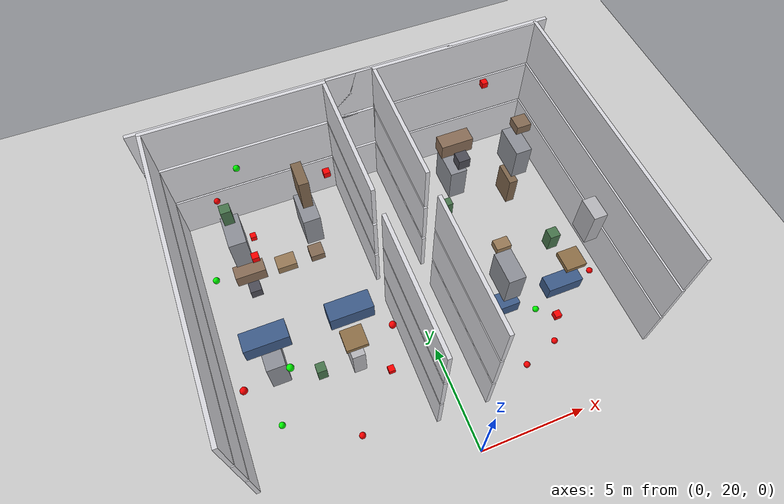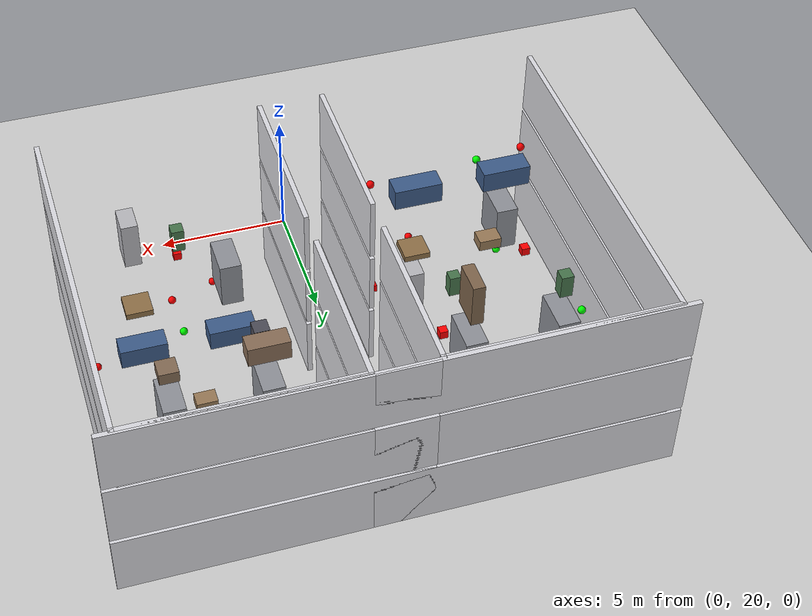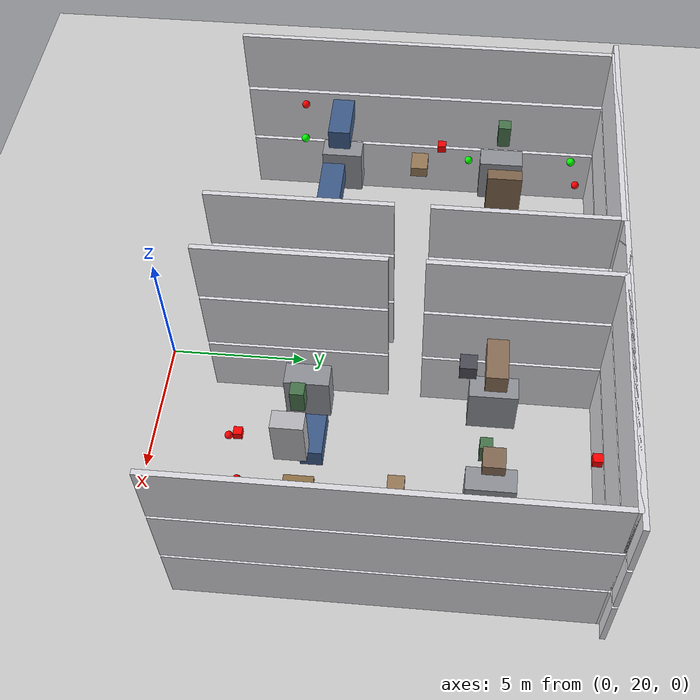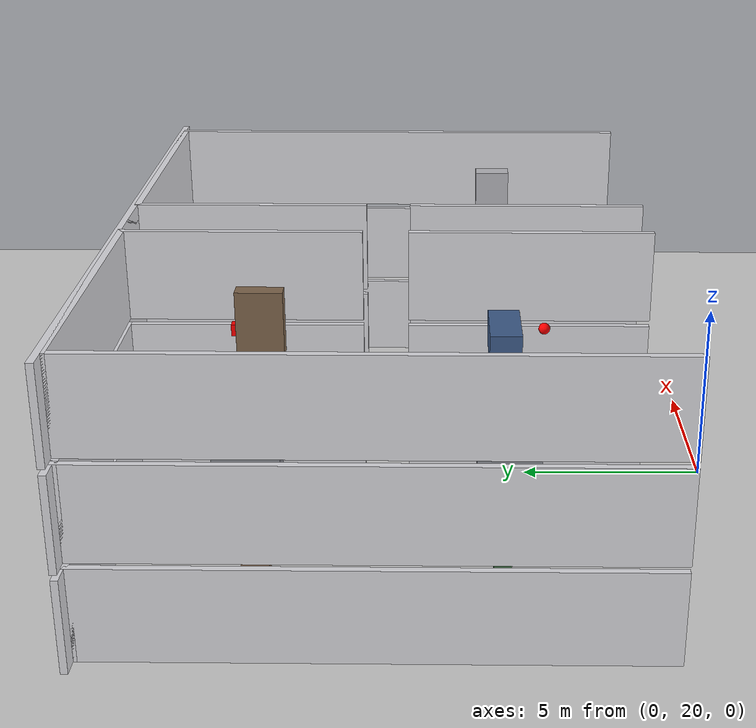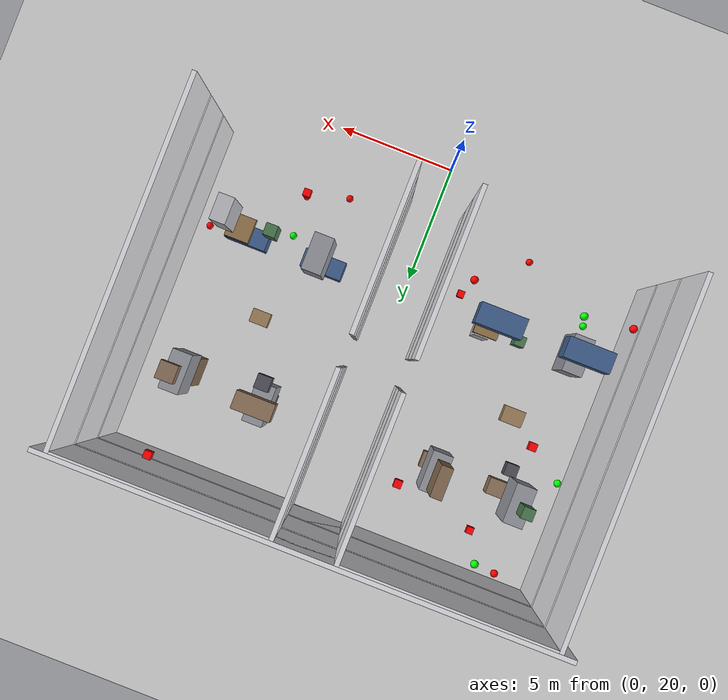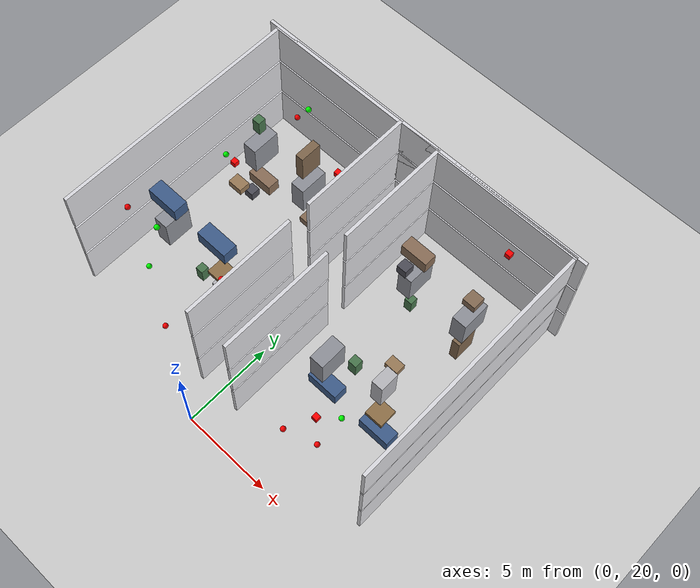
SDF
<sdf version="1.7">
 <world name="generated_world">
  <include><uri>model://sun</uri></include>
  <include><uri>model://ground_plane</uri></include>
  <model name="generated_building">
   <static>true</static>
   <link name="exterior_north_floor_0">
    <pose>0.0000 35.9100 1.2250 0.0000 0.0000 0.0000</pose>
    <collision name="exterior_north_floor_0_collision">
     <geometry><box><size>20.0000 0.1800 2.4500</size></box></geometry>
    </collision>
    <visual name="exterior_north_floor_0_visual">
     <geometry><box><size>20.0000 0.1800 2.4500</size></box></geometry>
     <material><ambient>0.86 0.86 0.88 1</ambient><diffuse>0.86 0.86 0.88 1</diffuse></material>
    </visual>
    <gravity>false</gravity>
   </link>
   <link name="north_end_wall_floor_0">
    <pose>0.0000 35.9100 1.2250 0.0000 0.0000 0.0000</pose>
    <collision name="north_end_wall_floor_0_collision">
     <geometry><box><size>2.2000 0.1800 2.4500</size></box></geometry>
    </collision>
    <visual name="north_end_wall_floor_0_visual">
     <geometry><box><size>2.2000 0.1800 2.4500</size></box></geometry>
     <material><ambient>0.86 0.86 0.88 1</ambient><diffuse>0.86 0.86 0.88 1</diffuse></material>
    </visual>
    <gravity>false</gravity>
   </link>
   <link name="floor_0_room_2_corridor_wall_lower">
    <pose>-1.1900 25.0875 1.2250 0.0000 0.0000 0.0000</pose>
    <collision name="floor_0_room_2_corridor_wall_lower_collision">
     <geometry><box><size>0.1800 6.4150 2.4500</size></box></geometry>
    </collision>
    <visual name="floor_0_room_2_corridor_wall_lower_visual">
     <geometry><box><size>0.1800 6.4150 2.4500</size></box></geometry>
     <material><ambient>0.86 0.86 0.88 1</ambient><diffuse>0.86 0.86 0.88 1</diffuse></material>
    </visual>
    <gravity>false</gravity>
   </link>
   <link name="floor_0_room_2_corridor_wall_upper">
    <pose>-1.1900 32.7025 1.2250 0.0000 0.0000 0.0000</pose>
    <collision name="floor_0_room_2_corridor_wall_upper_collision">
     <geometry><box><size>0.1800 6.4150 2.4500</size></box></geometry>
    </collision>
    <visual name="floor_0_room_2_corridor_wall_upper_visual">
     <geometry><box><size>0.1800 6.4150 2.4500</size></box></geometry>
     <material><ambient>0.86 0.86 0.88 1</ambient><diffuse>0.86 0.86 0.88 1</diffuse></material>
    </visual>
    <gravity>false</gravity>
   </link>
   <link name="floor_0_room_2_west_wall">
    <pose>-9.4100 28.8950 1.2250 0.0000 0.0000 0.0000</pose>
    <collision name="floor_0_room_2_west_wall_collision">
     <geometry><box><size>0.1800 14.0300 2.4500</size></box></geometry>
    </collision>
    <visual name="floor_0_room_2_west_wall_visual">
     <geometry><box><size>0.1800 14.0300 2.4500</size></box></geometry>
     <material><ambient>0.86 0.86 0.88 1</ambient><diffuse>0.86 0.86 0.88 1</diffuse></material>
    </visual>
    <gravity>false</gravity>
   </link>
   <link name="floor_0_room_2_north_wall">
    <pose>-5.3000 35.8200 1.2250 0.0000 0.0000 0.0000</pose>
    <collision name="floor_0_room_2_north_wall_collision">
     <geometry><box><size>8.4000 0.1800 2.4500</size></box></geometry>
    </collision>
    <visual name="floor_0_room_2_north_wall_visual">
     <geometry><box><size>8.4000 0.1800 2.4500</size></box></geometry>
     <material><ambient>0.86 0.86 0.88 1</ambient><diffuse>0.86 0.86 0.88 1</diffuse></material>
    </visual>
    <gravity>false</gravity>
   </link>
   <link name="floor_0_room_3_corridor_wall_lower">
    <pose>1.1900 25.0875 1.2250 0.0000 0.0000 0.0000</pose>
    <collision name="floor_0_room_3_corridor_wall_lower_collision">
     <geometry><box><size>0.1800 6.4150 2.4500</size></box></geometry>
    </collision>
    <visual name="floor_0_room_3_corridor_wall_lower_visual">
     <geometry><box><size>0.1800 6.4150 2.4500</size></box></geometry>
     <material><ambient>0.86 0.86 0.88 1</ambient><diffuse>0.86 0.86 0.88 1</diffuse></material>
    </visual>
    <gravity>false</gravity>
   </link>
   <link name="floor_0_room_3_corridor_wall_upper">
    <pose>1.1900 32.7025 1.2250 0.0000 0.0000 0.0000</pose>
    <collision name="floor_0_room_3_corridor_wall_upper_collision">
     <geometry><box><size>0.1800 6.4150 2.4500</size></box></geometry>
    </collision>
    <visual name="floor_0_room_3_corridor_wall_upper_visual">
     <geometry><box><size>0.1800 6.4150 2.4500</size></box></geometry>
     <material><ambient>0.86 0.86 0.88 1</ambient><diffuse>0.86 0.86 0.88 1</diffuse></material>
    </visual>
    <gravity>false</gravity>
   </link>
   <link name="floor_0_room_3_east_wall">
    <pose>9.4100 28.8950 1.2250 0.0000 0.0000 0.0000</pose>
    <collision name="floor_0_room_3_east_wall_collision">
     <geometry><box><size>0.1800 14.0300 2.4500</size></box></geometry>
    </collision>
    <visual name="floor_0_room_3_east_wall_visual">
     <geometry><box><size>0.1800 14.0300 2.4500</size></box></geometry>
     <material><ambient>0.86 0.86 0.88 1</ambient><diffuse>0.86 0.86 0.88 1</diffuse></material>
    </visual>
    <gravity>false</gravity>
   </link>
   <link name="floor_0_room_3_north_wall">
    <pose>5.3000 35.8200 1.2250 0.0000 0.0000 0.0000</pose>
    <collision name="floor_0_room_3_north_wall_collision">
     <geometry><box><size>8.4000 0.1800 2.4500</size></box></geometry>
    </collision>
    <visual name="floor_0_room_3_north_wall_visual">
     <geometry><box><size>8.4000 0.1800 2.4500</size></box></geometry>
     <material><ambient>0.86 0.86 0.88 1</ambient><diffuse>0.86 0.86 0.88 1</diffuse></material>
    </visual>
    <gravity>false</gravity>
   </link>
   <link name="floor_0_room_2_desk">
    <pose>-7.0000 31.9525 0.4500 0.0000 0.0000 0.0000</pose>
    <collision name="floor_0_room_2_desk_collision">
     <geometry><box><size>1.5000 0.7000 0.7500</size></box></geometry>
    </collision>
    <visual name="floor_0_room_2_desk_visual">
     <geometry><box><size>1.5000 0.7000 0.7500</size></box></geometry>
     <material><ambient>0.54 0.43 0.34 1</ambient><diffuse>0.54 0.43 0.34 1</diffuse></material>
    </visual>
    <gravity>false</gravity>
   </link>
   <link name="floor_0_room_2_chair">
    <pose>-7.0000 31.0525 0.2800 0.0000 0.0000 0.0000</pose>
    <collision name="floor_0_room_2_chair_collision">
     <geometry><box><size>0.5500 0.5500 0.5500</size></box></geometry>
    </collision>
    <visual name="floor_0_room_2_chair_visual">
     <geometry><box><size>0.5500 0.5500 0.5500</size></box></geometry>
     <material><ambient>0.30 0.30 0.34 1</ambient><diffuse>0.30 0.30 0.34 1</diffuse></material>
    </visual>
    <gravity>false</gravity>
   </link>
   <link name="floor_0_room_2_cabinet">
    <pose>-3.6000 25.8375 0.9000 0.0000 0.0000 0.0000</pose>
    <collision name="floor_0_room_2_cabinet_collision">
     <geometry><box><size>0.6000 1.0000 1.8000</size></box></geometry>
    </collision>
    <visual name="floor_0_room_2_cabinet_visual">
     <geometry><box><size>0.6000 1.0000 1.8000</size></box></geometry>
     <material><ambient>0.72 0.72 0.74 1</ambient><diffuse>0.72 0.72 0.74 1</diffuse></material>
    </visual>
    <gravity>false</gravity>
   </link>
   <link name="floor_0_room_2_side_table">
    <pose>-3.6000 31.9525 0.3200 0.0000 0.0000 0.0000</pose>
    <collision name="floor_0_room_2_side_table_collision">
     <geometry><box><size>0.7000 0.7000 0.4500</size></box></geometry>
    </collision>
    <visual name="floor_0_room_2_side_table_visual">
     <geometry><box><size>0.7000 0.7000 0.4500</size></box></geometry>
     <material><ambient>0.52 0.42 0.33 1</ambient><diffuse>0.52 0.42 0.33 1</diffuse></material>
    </visual>
    <gravity>false</gravity>
   </link>
   <link name="floor_0_room_2_planter">
    <pose>-5.3000 25.8375 0.4500 0.0000 0.0000 0.0000</pose>
    <collision name="floor_0_room_2_planter_collision">
     <geometry><box><size>0.4500 0.4500 0.9000</size></box></geometry>
    </collision>
    <visual name="floor_0_room_2_planter_visual">
     <geometry><box><size>0.4500 0.4500 0.9000</size></box></geometry>
     <material><ambient>0.28 0.46 0.30 1</ambient><diffuse>0.28 0.46 0.30 1</diffuse></material>
    </visual>
    <gravity>false</gravity>
   </link>
   <link name="floor_0_room_3_sofa_a">
    <pose>3.6000 25.8375 0.4500 0.0000 0.0000 0.0000</pose>
    <collision name="floor_0_room_3_sofa_a_collision">
     <geometry><box><size>1.8000 0.8000 0.8000</size></box></geometry>
    </collision>
    <visual name="floor_0_room_3_sofa_a_visual">
     <geometry><box><size>1.8000 0.8000 0.8000</size></box></geometry>
     <material><ambient>0.24 0.36 0.54 1</ambient><diffuse>0.24 0.36 0.54 1</diffuse></material>
    </visual>
    <gravity>false</gravity>
   </link>
   <link name="floor_0_room_3_sofa_b">
    <pose>7.0000 25.8375 0.4500 0.0000 0.0000 3.1400</pose>
    <collision name="floor_0_room_3_sofa_b_collision">
     <geometry><box><size>1.8000 0.8000 0.8000</size></box></geometry>
    </collision>
    <visual name="floor_0_room_3_sofa_b_visual">
     <geometry><box><size>1.8000 0.8000 0.8000</size></box></geometry>
     <material><ambient>0.24 0.36 0.54 1</ambient><diffuse>0.24 0.36 0.54 1</diffuse></material>
    </visual>
    <gravity>false</gravity>
   </link>
   <link name="floor_0_room_3_coffee_table">
    <pose>5.3000 28.8950 0.2500 0.0000 0.0000 0.0000</pose>
    <collision name="floor_0_room_3_coffee_table_collision">
     <geometry><box><size>0.8000 0.6000 0.4000</size></box></geometry>
    </collision>
    <visual name="floor_0_room_3_coffee_table_visual">
     <geometry><box><size>0.8000 0.6000 0.4000</size></box></geometry>
     <material><ambient>0.60 0.48 0.34 1</ambient><diffuse>0.60 0.48 0.34 1</diffuse></material>
    </visual>
    <gravity>false</gravity>
   </link>
   <link name="floor_0_room_3_bookshelf">
    <pose>7.0000 31.9525 0.8500 0.0000 0.0000 0.0000</pose>
    <collision name="floor_0_room_3_bookshelf_collision">
     <geometry><box><size>0.4500 1.2000 1.7000</size></box></geometry>
    </collision>
    <visual name="floor_0_room_3_bookshelf_visual">
     <geometry><box><size>0.4500 1.2000 1.7000</size></box></geometry>
     <material><ambient>0.50 0.40 0.30 1</ambient><diffuse>0.50 0.40 0.30 1</diffuse></material>
    </visual>
    <gravity>false</gravity>
   </link>
   <link name="floor_0_room_3_planter">
    <pose>3.6000 31.9525 0.4500 0.0000 0.0000 0.0000</pose>
    <collision name="floor_0_room_3_planter_collision">
     <geometry><box><size>0.4500 0.4500 0.9000</size></box></geometry>
    </collision>
    <visual name="floor_0_room_3_planter_visual">
     <geometry><box><size>0.4500 0.4500 0.9000</size></box></geometry>
     <material><ambient>0.28 0.46 0.30 1</ambient><diffuse>0.28 0.46 0.30 1</diffuse></material>
    </visual>
    <gravity>false</gravity>
   </link>
   <link name="exterior_north_floor_1">
    <pose>0.0000 35.9100 3.8250 0.0000 0.0000 0.0000</pose>
    <collision name="exterior_north_floor_1_collision">
     <geometry><box><size>20.0000 0.1800 2.4500</size></box></geometry>
    </collision>
    <visual name="exterior_north_floor_1_visual">
     <geometry><box><size>20.0000 0.1800 2.4500</size></box></geometry>
     <material><ambient>0.86 0.86 0.88 1</ambient><diffuse>0.86 0.86 0.88 1</diffuse></material>
    </visual>
    <gravity>false</gravity>
   </link>
   <link name="north_end_wall_floor_1">
    <pose>0.0000 35.9100 3.8250 0.0000 0.0000 0.0000</pose>
    <collision name="north_end_wall_floor_1_collision">
     <geometry><box><size>2.2000 0.1800 2.4500</size></box></geometry>
    </collision>
    <visual name="north_end_wall_floor_1_visual">
     <geometry><box><size>2.2000 0.1800 2.4500</size></box></geometry>
     <material><ambient>0.86 0.86 0.88 1</ambient><diffuse>0.86 0.86 0.88 1</diffuse></material>
    </visual>
    <gravity>false</gravity>
   </link>
   <link name="floor_1_room_2_corridor_wall_lower">
    <pose>-1.1900 25.0875 3.8250 0.0000 0.0000 0.0000</pose>
    <collision name="floor_1_room_2_corridor_wall_lower_collision">
     <geometry><box><size>0.1800 6.4150 2.4500</size></box></geometry>
    </collision>
    <visual name="floor_1_room_2_corridor_wall_lower_visual">
     <geometry><box><size>0.1800 6.4150 2.4500</size></box></geometry>
     <material><ambient>0.86 0.86 0.88 1</ambient><diffuse>0.86 0.86 0.88 1</diffuse></material>
    </visual>
    <gravity>false</gravity>
   </link>
   <link name="floor_1_room_2_corridor_wall_upper">
    <pose>-1.1900 32.7025 3.8250 0.0000 0.0000 0.0000</pose>
    <collision name="floor_1_room_2_corridor_wall_upper_collision">
     <geometry><box><size>0.1800 6.4150 2.4500</size></box></geometry>
    </collision>
    <visual name="floor_1_room_2_corridor_wall_upper_visual">
     <geometry><box><size>0.1800 6.4150 2.4500</size></box></geometry>
     <material><ambient>0.86 0.86 0.88 1</ambient><diffuse>0.86 0.86 0.88 1</diffuse></material>
    </visual>
    <gravity>false</gravity>
   </link>
   <link name="floor_1_room_2_west_wall">
    <pose>-9.4100 28.8950 3.8250 0.0000 0.0000 0.0000</pose>
    <collision name="floor_1_room_2_west_wall_collision">
     <geometry><box><size>0.1800 14.0300 2.4500</size></box></geometry>
    </collision>
    <visual name="floor_1_room_2_west_wall_visual">
     <geometry><box><size>0.1800 14.0300 2.4500</size></box></geometry>
     <material><ambient>0.86 0.86 0.88 1</ambient><diffuse>0.86 0.86 0.88 1</diffuse></material>
    </visual>
    <gravity>false</gravity>
   </link>
   <link name="floor_1_room_2_north_wall">
    <pose>-5.3000 35.8200 3.8250 0.0000 0.0000 0.0000</pose>
    <collision name="floor_1_room_2_north_wall_collision">
     <geometry><box><size>8.4000 0.1800 2.4500</size></box></geometry>
    </collision>
    <visual name="floor_1_room_2_north_wall_visual">
     <geometry><box><size>8.4000 0.1800 2.4500</size></box></geometry>
     <material><ambient>0.86 0.86 0.88 1</ambient><diffuse>0.86 0.86 0.88 1</diffuse></material>
    </visual>
    <gravity>false</gravity>
   </link>
   <link name="floor_1_room_3_corridor_wall_lower">
    <pose>1.1900 25.0875 3.8250 0.0000 0.0000 0.0000</pose>
    <collision name="floor_1_room_3_corridor_wall_lower_collision">
     <geometry><box><size>0.1800 6.4150 2.4500</size></box></geometry>
    </collision>
    <visual name="floor_1_room_3_corridor_wall_lower_visual">
     <geometry><box><size>0.1800 6.4150 2.4500</size></box></geometry>
     <material><ambient>0.86 0.86 0.88 1</ambient><diffuse>0.86 0.86 0.88 1</diffuse></material>
    </visual>
    <gravity>false</gravity>
   </link>
   <link name="floor_1_room_3_corridor_wall_upper">
    <pose>1.1900 32.7025 3.8250 0.0000 0.0000 0.0000</pose>
    <collision name="floor_1_room_3_corridor_wall_upper_collision">
     <geometry><box><size>0.1800 6.4150 2.4500</size></box></geometry>
    </collision>
    <visual name="floor_1_room_3_corridor_wall_upper_visual">
     <geometry><box><size>0.1800 6.4150 2.4500</size></box></geometry>
     <material><ambient>0.86 0.86 0.88 1</ambient><diffuse>0.86 0.86 0.88 1</diffuse></material>
    </visual>
    <gravity>false</gravity>
   </link>
   <link name="floor_1_room_3_east_wall">
    <pose>9.4100 28.8950 3.8250 0.0000 0.0000 0.0000</pose>
    <collision name="floor_1_room_3_east_wall_collision">
     <geometry><box><size>0.1800 14.0300 2.4500</size></box></geometry>
    </collision>
    <visual name="floor_1_room_3_east_wall_visual">
     <geometry><box><size>0.1800 14.0300 2.4500</size></box></geometry>
     <material><ambient>0.86 0.86 0.88 1</ambient><diffuse>0.86 0.86 0.88 1</diffuse></material>
    </visual>
    <gravity>false</gravity>
   </link>
   <link name="floor_1_room_3_north_wall">
    <pose>5.3000 35.8200 3.8250 0.0000 0.0000 0.0000</pose>
    <collision name="floor_1_room_3_north_wall_collision">
     <geometry><box><size>8.4000 0.1800 2.4500</size></box></geometry>
    </collision>
    <visual name="floor_1_room_3_north_wall_visual">
     <geometry><box><size>8.4000 0.1800 2.4500</size></box></geometry>
     <material><ambient>0.86 0.86 0.88 1</ambient><diffuse>0.86 0.86 0.88 1</diffuse></material>
    </visual>
    <gravity>false</gravity>
   </link>
   <link name="floor_1_room_2_rack_a">
    <pose>-7.0000 31.9525 3.5000 0.0000 0.0000 0.0000</pose>
    <collision name="floor_1_room_2_rack_a_collision">
     <geometry><box><size>0.8000 1.6000 1.8000</size></box></geometry>
    </collision>
    <visual name="floor_1_room_2_rack_a_visual">
     <geometry><box><size>0.8000 1.6000 1.8000</size></box></geometry>
     <material><ambient>0.56 0.57 0.60 1</ambient><diffuse>0.56 0.57 0.60 1</diffuse></material>
    </visual>
    <gravity>false</gravity>
   </link>
   <link name="floor_1_room_2_rack_b">
    <pose>-3.6000 31.9525 3.5000 0.0000 0.0000 0.0000</pose>
    <collision name="floor_1_room_2_rack_b_collision">
     <geometry><box><size>0.8000 1.6000 1.8000</size></box></geometry>
    </collision>
    <visual name="floor_1_room_2_rack_b_visual">
     <geometry><box><size>0.8000 1.6000 1.8000</size></box></geometry>
     <material><ambient>0.56 0.57 0.60 1</ambient><diffuse>0.56 0.57 0.60 1</diffuse></material>
    </visual>
    <gravity>false</gravity>
   </link>
   <link name="floor_1_room_2_rack_c">
    <pose>-7.0000 25.8375 3.5000 0.0000 0.0000 0.0000</pose>
    <collision name="floor_1_room_2_rack_c_collision">
     <geometry><box><size>0.8000 1.5000 1.8000</size></box></geometry>
    </collision>
    <visual name="floor_1_room_2_rack_c_visual">
     <geometry><box><size>0.8000 1.5000 1.8000</size></box></geometry>
     <material><ambient>0.56 0.57 0.60 1</ambient><diffuse>0.56 0.57 0.60 1</diffuse></material>
    </visual>
    <gravity>false</gravity>
   </link>
   <link name="floor_1_room_2_pallet">
    <pose>-3.6000 25.8375 2.7200 0.0000 0.0000 0.0000</pose>
    <collision name="floor_1_room_2_pallet_collision">
     <geometry><box><size>1.0000 1.0000 0.2400</size></box></geometry>
    </collision>
    <visual name="floor_1_room_2_pallet_visual">
     <geometry><box><size>1.0000 1.0000 0.2400</size></box></geometry>
     <material><ambient>0.56 0.44 0.28 1</ambient><diffuse>0.56 0.44 0.28 1</diffuse></material>
    </visual>
    <gravity>false</gravity>
   </link>
   <link name="floor_1_room_3_rack_a">
    <pose>3.6000 31.9525 3.5000 0.0000 0.0000 0.0000</pose>
    <collision name="floor_1_room_3_rack_a_collision">
     <geometry><box><size>0.8000 1.6000 1.8000</size></box></geometry>
    </collision>
    <visual name="floor_1_room_3_rack_a_visual">
     <geometry><box><size>0.8000 1.6000 1.8000</size></box></geometry>
     <material><ambient>0.56 0.57 0.60 1</ambient><diffuse>0.56 0.57 0.60 1</diffuse></material>
    </visual>
    <gravity>false</gravity>
   </link>
   <link name="floor_1_room_3_rack_b">
    <pose>7.0000 31.9525 3.5000 0.0000 0.0000 0.0000</pose>
    <collision name="floor_1_room_3_rack_b_collision">
     <geometry><box><size>0.8000 1.6000 1.8000</size></box></geometry>
    </collision>
    <visual name="floor_1_room_3_rack_b_visual">
     <geometry><box><size>0.8000 1.6000 1.8000</size></box></geometry>
     <material><ambient>0.56 0.57 0.60 1</ambient><diffuse>0.56 0.57 0.60 1</diffuse></material>
    </visual>
    <gravity>false</gravity>
   </link>
   <link name="floor_1_room_3_rack_c">
    <pose>3.6000 25.8375 3.5000 0.0000 0.0000 0.0000</pose>
    <collision name="floor_1_room_3_rack_c_collision">
     <geometry><box><size>0.8000 1.5000 1.8000</size></box></geometry>
    </collision>
    <visual name="floor_1_room_3_rack_c_visual">
     <geometry><box><size>0.8000 1.5000 1.8000</size></box></geometry>
     <material><ambient>0.56 0.57 0.60 1</ambient><diffuse>0.56 0.57 0.60 1</diffuse></material>
    </visual>
    <gravity>false</gravity>
   </link>
   <link name="floor_1_room_3_pallet">
    <pose>7.0000 25.8375 2.7200 0.0000 0.0000 0.0000</pose>
    <collision name="floor_1_room_3_pallet_collision">
     <geometry><box><size>1.0000 1.0000 0.2400</size></box></geometry>
    </collision>
    <visual name="floor_1_room_3_pallet_visual">
     <geometry><box><size>1.0000 1.0000 0.2400</size></box></geometry>
     <material><ambient>0.56 0.44 0.28 1</ambient><diffuse>0.56 0.44 0.28 1</diffuse></material>
    </visual>
    <gravity>false</gravity>
   </link>
   <link name="exterior_north_floor_2">
    <pose>0.0000 35.9100 6.4250 0.0000 0.0000 0.0000</pose>
    <collision name="exterior_north_floor_2_collision">
     <geometry><box><size>20.0000 0.1800 2.4500</size></box></geometry>
    </collision>
    <visual name="exterior_north_floor_2_visual">
     <geometry><box><size>20.0000 0.1800 2.4500</size></box></geometry>
     <material><ambient>0.86 0.86 0.88 1</ambient><diffuse>0.86 0.86 0.88 1</diffuse></material>
    </visual>
    <gravity>false</gravity>
   </link>
   <link name="north_end_wall_floor_2">
    <pose>0.0000 35.9100 6.4250 0.0000 0.0000 0.0000</pose>
    <collision name="north_end_wall_floor_2_collision">
     <geometry><box><size>2.2000 0.1800 2.4500</size></box></geometry>
    </collision>
    <visual name="north_end_wall_floor_2_visual">
     <geometry><box><size>2.2000 0.1800 2.4500</size></box></geometry>
     <material><ambient>0.86 0.86 0.88 1</ambient><diffuse>0.86 0.86 0.88 1</diffuse></material>
    </visual>
    <gravity>false</gravity>
   </link>
   <link name="floor_2_room_2_corridor_wall_lower">
    <pose>-1.1900 25.0875 6.4250 0.0000 0.0000 0.0000</pose>
    <collision name="floor_2_room_2_corridor_wall_lower_collision">
     <geometry><box><size>0.1800 6.4150 2.4500</size></box></geometry>
    </collision>
    <visual name="floor_2_room_2_corridor_wall_lower_visual">
     <geometry><box><size>0.1800 6.4150 2.4500</size></box></geometry>
     <material><ambient>0.86 0.86 0.88 1</ambient><diffuse>0.86 0.86 0.88 1</diffuse></material>
    </visual>
    <gravity>false</gravity>
   </link>
   <link name="floor_2_room_2_corridor_wall_upper">
    <pose>-1.1900 32.7025 6.4250 0.0000 0.0000 0.0000</pose>
    <collision name="floor_2_room_2_corridor_wall_upper_collision">
     <geometry><box><size>0.1800 6.4150 2.4500</size></box></geometry>
    </collision>
    <visual name="floor_2_room_2_corridor_wall_upper_visual">
     <geometry><box><size>0.1800 6.4150 2.4500</size></box></geometry>
     <material><ambient>0.86 0.86 0.88 1</ambient><diffuse>0.86 0.86 0.88 1</diffuse></material>
    </visual>
    <gravity>false</gravity>
   </link>
   <link name="floor_2_room_2_west_wall">
    <pose>-9.4100 28.8950 6.4250 0.0000 0.0000 0.0000</pose>
    <collision name="floor_2_room_2_west_wall_collision">
     <geometry><box><size>0.1800 14.0300 2.4500</size></box></geometry>
    </collision>
    <visual name="floor_2_room_2_west_wall_visual">
     <geometry><box><size>0.1800 14.0300 2.4500</size></box></geometry>
     <material><ambient>0.86 0.86 0.88 1</ambient><diffuse>0.86 0.86 0.88 1</diffuse></material>
    </visual>
    <gravity>false</gravity>
   </link>
   <link name="floor_2_room_2_north_wall">
    <pose>-5.3000 35.8200 6.4250 0.0000 0.0000 0.0000</pose>
    <collision name="floor_2_room_2_north_wall_collision">
     <geometry><box><size>8.4000 0.1800 2.4500</size></box></geometry>
    </collision>
    <visual name="floor_2_room_2_north_wall_visual">
     <geometry><box><size>8.4000 0.1800 2.4500</size></box></geometry>
     <material><ambient>0.86 0.86 0.88 1</ambient><diffuse>0.86 0.86 0.88 1</diffuse></material>
    </visual>
    <gravity>false</gravity>
   </link>
   <link name="floor_2_room_3_corridor_wall_lower">
    <pose>1.1900 25.0875 6.4250 0.0000 0.0000 0.0000</pose>
    <collision name="floor_2_room_3_corridor_wall_lower_collision">
     <geometry><box><size>0.1800 6.4150 2.4500</size></box></geometry>
    </collision>
    <visual name="floor_2_room_3_corridor_wall_lower_visual">
     <geometry><box><size>0.1800 6.4150 2.4500</size></box></geometry>
     <material><ambient>0.86 0.86 0.88 1</ambient><diffuse>0.86 0.86 0.88 1</diffuse></material>
    </visual>
    <gravity>false</gravity>
   </link>
   <link name="floor_2_room_3_corridor_wall_upper">
    <pose>1.1900 32.7025 6.4250 0.0000 0.0000 0.0000</pose>
    <collision name="floor_2_room_3_corridor_wall_upper_collision">
     <geometry><box><size>0.1800 6.4150 2.4500</size></box></geometry>
    </collision>
    <visual name="floor_2_room_3_corridor_wall_upper_visual">
     <geometry><box><size>0.1800 6.4150 2.4500</size></box></geometry>
     <material><ambient>0.86 0.86 0.88 1</ambient><diffuse>0.86 0.86 0.88 1</diffuse></material>
    </visual>
    <gravity>false</gravity>
   </link>
   <link name="floor_2_room_3_east_wall">
    <pose>9.4100 28.8950 6.4250 0.0000 0.0000 0.0000</pose>
    <collision name="floor_2_room_3_east_wall_collision">
     <geometry><box><size>0.1800 14.0300 2.4500</size></box></geometry>
    </collision>
    <visual name="floor_2_room_3_east_wall_visual">
     <geometry><box><size>0.1800 14.0300 2.4500</size></box></geometry>
     <material><ambient>0.86 0.86 0.88 1</ambient><diffuse>0.86 0.86 0.88 1</diffuse></material>
    </visual>
    <gravity>false</gravity>
   </link>
   <link name="floor_2_room_3_north_wall">
    <pose>5.3000 35.8200 6.4250 0.0000 0.0000 0.0000</pose>
    <collision name="floor_2_room_3_north_wall_collision">
     <geometry><box><size>8.4000 0.1800 2.4500</size></box></geometry>
    </collision>
    <visual name="floor_2_room_3_north_wall_visual">
     <geometry><box><size>8.4000 0.1800 2.4500</size></box></geometry>
     <material><ambient>0.86 0.86 0.88 1</ambient><diffuse>0.86 0.86 0.88 1</diffuse></material>
    </visual>
    <gravity>false</gravity>
   </link>
   <link name="floor_2_room_2_sofa_a">
    <pose>-7.0000 25.8375 5.6500 0.0000 0.0000 0.0000</pose>
    <collision name="floor_2_room_2_sofa_a_collision">
     <geometry><box><size>1.8000 0.8000 0.8000</size></box></geometry>
    </collision>
    <visual name="floor_2_room_2_sofa_a_visual">
     <geometry><box><size>1.8000 0.8000 0.8000</size></box></geometry>
     <material><ambient>0.24 0.36 0.54 1</ambient><diffuse>0.24 0.36 0.54 1</diffuse></material>
    </visual>
    <gravity>false</gravity>
   </link>
   <link name="floor_2_room_2_sofa_b">
    <pose>-3.6000 25.8375 5.6500 0.0000 0.0000 3.1400</pose>
    <collision name="floor_2_room_2_sofa_b_collision">
     <geometry><box><size>1.8000 0.8000 0.8000</size></box></geometry>
    </collision>
    <visual name="floor_2_room_2_sofa_b_visual">
     <geometry><box><size>1.8000 0.8000 0.8000</size></box></geometry>
     <material><ambient>0.24 0.36 0.54 1</ambient><diffuse>0.24 0.36 0.54 1</diffuse></material>
    </visual>
    <gravity>false</gravity>
   </link>
   <link name="floor_2_room_2_coffee_table">
    <pose>-5.3000 28.8950 5.4500 0.0000 0.0000 0.0000</pose>
    <collision name="floor_2_room_2_coffee_table_collision">
     <geometry><box><size>0.8000 0.6000 0.4000</size></box></geometry>
    </collision>
    <visual name="floor_2_room_2_coffee_table_visual">
     <geometry><box><size>0.8000 0.6000 0.4000</size></box></geometry>
     <material><ambient>0.60 0.48 0.34 1</ambient><diffuse>0.60 0.48 0.34 1</diffuse></material>
    </visual>
    <gravity>false</gravity>
   </link>
   <link name="floor_2_room_2_bookshelf">
    <pose>-3.6000 31.9525 6.0500 0.0000 0.0000 0.0000</pose>
    <collision name="floor_2_room_2_bookshelf_collision">
     <geometry><box><size>0.4500 1.2000 1.7000</size></box></geometry>
    </collision>
    <visual name="floor_2_room_2_bookshelf_visual">
     <geometry><box><size>0.4500 1.2000 1.7000</size></box></geometry>
     <material><ambient>0.50 0.40 0.30 1</ambient><diffuse>0.50 0.40 0.30 1</diffuse></material>
    </visual>
    <gravity>false</gravity>
   </link>
   <link name="floor_2_room_2_planter">
    <pose>-7.0000 31.9525 5.6500 0.0000 0.0000 0.0000</pose>
    <collision name="floor_2_room_2_planter_collision">
     <geometry><box><size>0.4500 0.4500 0.9000</size></box></geometry>
    </collision>
    <visual name="floor_2_room_2_planter_visual">
     <geometry><box><size>0.4500 0.4500 0.9000</size></box></geometry>
     <material><ambient>0.28 0.46 0.30 1</ambient><diffuse>0.28 0.46 0.30 1</diffuse></material>
    </visual>
    <gravity>false</gravity>
   </link>
   <link name="floor_2_room_3_desk">
    <pose>3.6000 31.9525 5.6500 0.0000 0.0000 0.0000</pose>
    <collision name="floor_2_room_3_desk_collision">
     <geometry><box><size>1.5000 0.7000 0.7500</size></box></geometry>
    </collision>
    <visual name="floor_2_room_3_desk_visual">
     <geometry><box><size>1.5000 0.7000 0.7500</size></box></geometry>
     <material><ambient>0.54 0.43 0.34 1</ambient><diffuse>0.54 0.43 0.34 1</diffuse></material>
    </visual>
    <gravity>false</gravity>
   </link>
   <link name="floor_2_room_3_chair">
    <pose>3.6000 31.0525 5.4800 0.0000 0.0000 0.0000</pose>
    <collision name="floor_2_room_3_chair_collision">
     <geometry><box><size>0.5500 0.5500 0.5500</size></box></geometry>
    </collision>
    <visual name="floor_2_room_3_chair_visual">
     <geometry><box><size>0.5500 0.5500 0.5500</size></box></geometry>
     <material><ambient>0.30 0.30 0.34 1</ambient><diffuse>0.30 0.30 0.34 1</diffuse></material>
    </visual>
    <gravity>false</gravity>
   </link>
   <link name="floor_2_room_3_cabinet">
    <pose>7.0000 25.8375 6.1000 0.0000 0.0000 0.0000</pose>
    <collision name="floor_2_room_3_cabinet_collision">
     <geometry><box><size>0.6000 1.0000 1.8000</size></box></geometry>
    </collision>
    <visual name="floor_2_room_3_cabinet_visual">
     <geometry><box><size>0.6000 1.0000 1.8000</size></box></geometry>
     <material><ambient>0.72 0.72 0.74 1</ambient><diffuse>0.72 0.72 0.74 1</diffuse></material>
    </visual>
    <gravity>false</gravity>
   </link>
   <link name="floor_2_room_3_side_table">
    <pose>7.0000 31.9525 5.5200 0.0000 0.0000 0.0000</pose>
    <collision name="floor_2_room_3_side_table_collision">
     <geometry><box><size>0.7000 0.7000 0.4500</size></box></geometry>
    </collision>
    <visual name="floor_2_room_3_side_table_visual">
     <geometry><box><size>0.7000 0.7000 0.4500</size></box></geometry>
     <material><ambient>0.52 0.42 0.33 1</ambient><diffuse>0.52 0.42 0.33 1</diffuse></material>
    </visual>
    <gravity>false</gravity>
   </link>
   <link name="floor_2_room_3_planter">
    <pose>5.3000 25.8375 5.6500 0.0000 0.0000 0.0000</pose>
    <collision name="floor_2_room_3_planter_collision">
     <geometry><box><size>0.4500 0.4500 0.9000</size></box></geometry>
    </collision>
    <visual name="floor_2_room_3_planter_visual">
     <geometry><box><size>0.4500 0.4500 0.9000</size></box></geometry>
     <material><ambient>0.28 0.46 0.30 1</ambient><diffuse>0.28 0.46 0.30 1</diffuse></material>
    </visual>
    <gravity>false</gravity>
   </link>
  </model>
  <model name="distractor_green_sphere_01">
   <static>true</static>
   <pose>-8.434329 30.732969 2.750000 0.000000 0.000000 0.000000</pose>
   <link name="link">
    <collision name="collision"><geometry><sphere><radius>0.150</radius></sphere></geometry></collision>
    <visual name="visual">
     <geometry><sphere><radius>0.150</radius></sphere></geometry>
     <material><ambient>0.0 1.0 0.0 1.0</ambient><diffuse>0.0 1.0 0.0 1.0</diffuse></material>
    </visual>
   </link>
  </model>
  <model name="danger_red_sphere_02">
   <static>true</static>
   <pose>-7.391933 34.979194 2.750000 0.000000 0.000000 0.000000</pose>
   <link name="link">
    <collision name="collision"><geometry><sphere><radius>0.150</radius></sphere></geometry></collision>
    <visual name="visual">
     <geometry><sphere><radius>0.150</radius></sphere></geometry>
     <material><ambient>1.0 0.0 0.0 1.0</ambient><diffuse>1.0 0.0 0.0 1.0</diffuse></material>
    </visual>
   </link>
  </model>
  <model name="danger_red_sphere_03">
   <static>true</static>
   <pose>5.348592 23.319365 0.150000 0.000000 0.000000 0.000000</pose>
   <link name="link">
    <collision name="collision"><geometry><sphere><radius>0.150</radius></sphere></geometry></collision>
    <visual name="visual">
     <geometry><sphere><radius>0.150</radius></sphere></geometry>
     <material><ambient>1.0 0.0 0.0 1.0</ambient><diffuse>1.0 0.0 0.0 1.0</diffuse></material>
    </visual>
   </link>
  </model>
  <model name="distractor_red_box_03">
   <static>true</static>
   <pose>-2.300216 24.830585 0.150000 0.000000 0.000000 0.000000</pose>
   <link name="link">
    <collision name="collision">
     <geometry><box><size>0.300000 0.300000 0.300000</size></box></geometry>
    </collision>
    <visual name="visual">
     <geometry><box><size>0.300000 0.300000 0.300000</size></box></geometry>
     <material><ambient>1.0 0.0 0.0 1.0</ambient><diffuse>1.0 0.0 0.0 1.0</diffuse></material>
    </visual>
   </link>
  </model>
  <model name="distractor_red_box_06">
   <static>true</static>
   <pose>6.603211 35.058156 5.350000 0.000000 0.000000 0.000000</pose>
   <link name="link">
    <collision name="collision">
     <geometry><box><size>0.300000 0.300000 0.300000</size></box></geometry>
    </collision>
    <visual name="visual">
     <geometry><box><size>0.300000 0.300000 0.300000</size></box></geometry>
     <material><ambient>1.0 0.0 0.0 1.0</ambient><diffuse>1.0 0.0 0.0 1.0</diffuse></material>
    </visual>
   </link>
  </model>
  <model name="distractor_red_box_07">
   <static>true</static>
   <pose>-6.411856 29.665206 5.350000 0.000000 0.000000 0.000000</pose>
   <link name="link">
    <collision name="collision">
     <geometry><box><size>0.300000 0.300000 0.300000</size></box></geometry>
    </collision>
    <visual name="visual">
     <geometry><box><size>0.300000 0.300000 0.300000</size></box></geometry>
     <material><ambient>1.0 0.0 0.0 1.0</ambient><diffuse>1.0 0.0 0.0 1.0</diffuse></material>
    </visual>
   </link>
  </model>
  <model name="distractor_green_sphere_08">
   <static>true</static>
   <pose>-7.684355 24.200482 0.150000 0.000000 0.000000 0.000000</pose>
   <link name="link">
    <collision name="collision"><geometry><sphere><radius>0.150</radius></sphere></geometry></collision>
    <visual name="visual">
     <geometry><sphere><radius>0.150</radius></sphere></geometry>
     <material><ambient>0.0 1.0 0.0 1.0</ambient><diffuse>0.0 1.0 0.0 1.0</diffuse></material>
    </visual>
   </link>
  </model>
  <model name="danger_red_sphere_07">
   <static>true</static>
   <pose>8.770161 25.997993 0.150000 0.000000 0.000000 0.000000</pose>
   <link name="link">
    <collision name="collision"><geometry><sphere><radius>0.150</radius></sphere></geometry></collision>
    <visual name="visual">
     <geometry><sphere><radius>0.150</radius></sphere></geometry>
     <material><ambient>1.0 0.0 0.0 1.0</ambient><diffuse>1.0 0.0 0.0 1.0</diffuse></material>
    </visual>
   </link>
  </model>
  <model name="distractor_green_sphere_09">
   <static>true</static>
   <pose>5.282968 25.105826 0.150000 0.000000 0.000000 0.000000</pose>
   <link name="link">
    <collision name="collision"><geometry><sphere><radius>0.150</radius></sphere></geometry></collision>
    <visual name="visual">
     <geometry><sphere><radius>0.150</radius></sphere></geometry>
     <material><ambient>0.0 1.0 0.0 1.0</ambient><diffuse>0.0 1.0 0.0 1.0</diffuse></material>
    </visual>
   </link>
  </model>
  <model name="distractor_red_box_10">
   <static>true</static>
   <pose>-6.328741 34.096477 0.150000 0.000000 0.000000 0.000000</pose>
   <link name="link">
    <collision name="collision">
     <geometry><box><size>0.300000 0.300000 0.300000</size></box></geometry>
    </collision>
    <visual name="visual">
     <geometry><box><size>0.300000 0.300000 0.300000</size></box></geometry>
     <material><ambient>1.0 0.0 0.0 1.0</ambient><diffuse>1.0 0.0 0.0 1.0</diffuse></material>
    </visual>
   </link>
  </model>
  <model name="distractor_green_sphere_11">
   <static>true</static>
   <pose>-6.445893 24.524882 5.350000 0.000000 0.000000 0.000000</pose>
   <link name="link">
    <collision name="collision"><geometry><sphere><radius>0.150</radius></sphere></geometry></collision>
    <visual name="visual">
     <geometry><sphere><radius>0.150</radius></sphere></geometry>
     <material><ambient>0.0 1.0 0.0 1.0</ambient><diffuse>0.0 1.0 0.0 1.0</diffuse></material>
    </visual>
   </link>
  </model>
  <model name="distractor_red_box_12">
   <static>true</static>
   <pose>5.024991 23.600414 2.750000 0.000000 0.000000 0.000000</pose>
   <link name="link">
    <collision name="collision">
     <geometry><box><size>0.300000 0.300000 0.300000</size></box></geometry>
    </collision>
    <visual name="visual">
     <geometry><box><size>0.300000 0.300000 0.300000</size></box></geometry>
     <material><ambient>1.0 0.0 0.0 1.0</ambient><diffuse>1.0 0.0 0.0 1.0</diffuse></material>
    </visual>
   </link>
  </model>
  <model name="danger_red_sphere_12">
   <static>true</static>
   <pose>-8.300770 24.300404 5.350000 0.000000 0.000000 0.000000</pose>
   <link name="link">
    <collision name="collision"><geometry><sphere><radius>0.150</radius></sphere></geometry></collision>
    <visual name="visual">
     <geometry><sphere><radius>0.150</radius></sphere></geometry>
     <material><ambient>1.0 0.0 0.0 1.0</ambient><diffuse>1.0 0.0 0.0 1.0</diffuse></material>
    </visual>
   </link>
  </model>
  <model name="distractor_green_sphere_16">
   <static>true</static>
   <pose>-6.002767 34.448571 5.350000 0.000000 0.000000 0.000000</pose>
   <link name="link">
    <collision name="collision"><geometry><sphere><radius>0.150</radius></sphere></geometry></collision>
    <visual name="visual">
     <geometry><sphere><radius>0.150</radius></sphere></geometry>
     <material><ambient>0.0 1.0 0.0 1.0</ambient><diffuse>0.0 1.0 0.0 1.0</diffuse></material>
    </visual>
   </link>
  </model>
  <model name="distractor_red_box_18">
   <static>true</static>
   <pose>-2.305174 32.720092 5.350000 0.000000 0.000000 0.000000</pose>
   <link name="link">
    <collision name="collision">
     <geometry><box><size>0.300000 0.300000 0.300000</size></box></geometry>
    </collision>
    <visual name="visual">
     <geometry><box><size>0.300000 0.300000 0.300000</size></box></geometry>
     <material><ambient>1.0 0.0 0.0 1.0</ambient><diffuse>1.0 0.0 0.0 1.0</diffuse></material>
    </visual>
   </link>
  </model>
  <model name="danger_red_sphere_14">
   <static>true</static>
   <pose>3.608353 22.745443 0.150000 0.000000 0.000000 0.000000</pose>
   <link name="link">
    <collision name="collision"><geometry><sphere><radius>0.150</radius></sphere></geometry></collision>
    <visual name="visual">
     <geometry><sphere><radius>0.150</radius></sphere></geometry>
     <material><ambient>1.0 0.0 0.0 1.0</ambient><diffuse>1.0 0.0 0.0 1.0</diffuse></material>
    </visual>
   </link>
  </model>
  <model name="danger_red_sphere_15">
   <static>true</static>
   <pose>-2.214097 24.742922 5.350000 0.000000 0.000000 0.000000</pose>
   <link name="link">
    <collision name="collision"><geometry><sphere><radius>0.150</radius></sphere></geometry></collision>
    <visual name="visual">
     <geometry><sphere><radius>0.150</radius></sphere></geometry>
     <material><ambient>1.0 0.0 0.0 1.0</ambient><diffuse>1.0 0.0 0.0 1.0</diffuse></material>
    </visual>
   </link>
  </model>
  <model name="danger_red_sphere_16">
   <static>true</static>
   <pose>-4.548193 22.486438 0.150000 0.000000 0.000000 0.000000</pose>
   <link name="link">
    <collision name="collision"><geometry><sphere><radius>0.150</radius></sphere></geometry></collision>
    <visual name="visual">
     <geometry><sphere><radius>0.150</radius></sphere></geometry>
     <material><ambient>1.0 0.0 0.0 1.0</ambient><diffuse>1.0 0.0 0.0 1.0</diffuse></material>
    </visual>
   </link>
  </model>
 </world>
</sdf>
